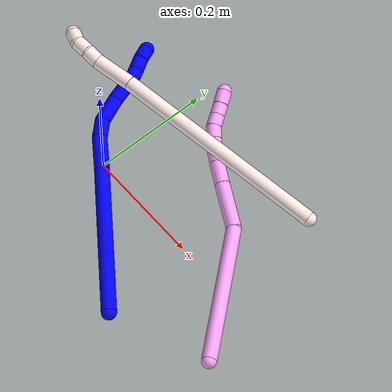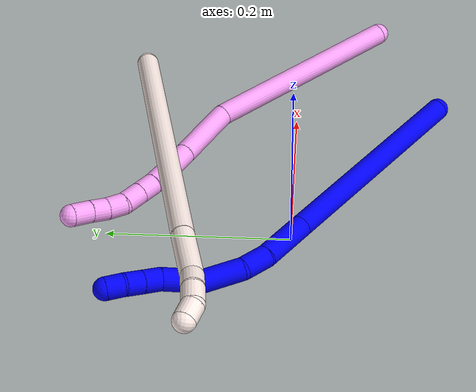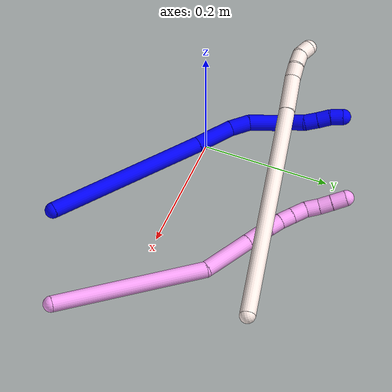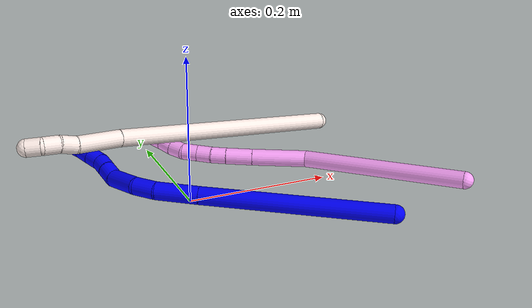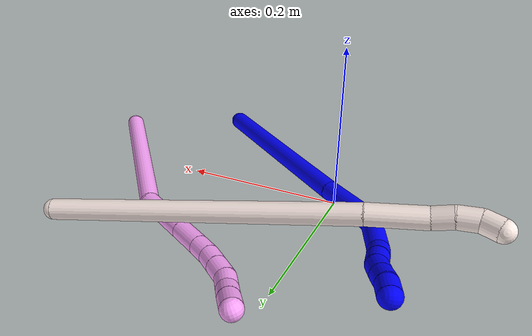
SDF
<sdf version="1.7">
 <world name="default">
  <model name="1">
   <static>0</static>
   <link name="1">
    <collision name="collision-cylinder-e_1_1_4">
     <pose>-0.104209 0.070821 -0.027122 -1.93653 -0.941698 1.27418</pose>
     <geometry><cylinder><radius>0.0125</radius><length>0.257766</length></cylinder></geometry>
     <surface>
      <friction><ode><mu>1.16</mu><mu2>1.16</mu2><slip1>0</slip1><slip2>0</slip2></ode></friction>
      <contact><ode><kp>1e+06</kp><kd>1</kd><max_vel>0</max_vel><min_depth>0.001</min_depth></ode></contact>
     </surface>
    </collision>
    <visual name="visual-cylinder-e_1_1_4">
     <pose>-0.104209 0.070821 -0.027122 -1.93653 -0.941698 1.27418</pose>
     <geometry><cylinder><radius>0.0125</radius><length>0.257766</length></cylinder></geometry>
     <material><ambient>0 0 1 1</ambient></material>
    </visual>
    <collision name="collision-cylinder-e_2_4_5">
     <pose>-0.233343 0.157552 -0.060925 -1.9684 -0.965217 1.33512</pose>
     <geometry><cylinder><radius>0.0125</radius><length>0.060629</length></cylinder></geometry>
     <surface>
      <friction><ode><mu>1.16</mu><mu2>1.16</mu2><slip1>0</slip1><slip2>0</slip2></ode></friction>
      <contact><ode><kp>1e+06</kp><kd>1</kd><max_vel>0</max_vel><min_depth>0.001</min_depth></ode></contact>
     </surface>
    </collision>
    <visual name="visual-cylinder-e_2_4_5">
     <pose>-0.233343 0.157552 -0.060925 -1.9684 -0.965217 1.33512</pose>
     <geometry><cylinder><radius>0.0125</radius><length>0.060629</length></cylinder></geometry>
     <material><ambient>0 0 1 1</ambient></material>
    </visual>
    <collision name="collision-cylinder-e_3_5_6">
     <pose>-0.271185 0.182482 -0.067927 -1.60625 -0.960974 0.990339</pose>
     <geometry><cylinder><radius>0.0125</radius><length>0.031519</length></cylinder></geometry>
     <surface>
      <friction><ode><mu>1.16</mu><mu2>1.16</mu2><slip1>0</slip1><slip2>0</slip2></ode></friction>
      <contact><ode><kp>1e+06</kp><kd>1</kd><max_vel>0</max_vel><min_depth>0.001</min_depth></ode></contact>
     </surface>
    </collision>
    <visual name="visual-cylinder-e_3_5_6">
     <pose>-0.271185 0.182482 -0.067927 -1.60625 -0.960974 0.990339</pose>
     <geometry><cylinder><radius>0.0125</radius><length>0.031519</length></cylinder></geometry>
     <material><ambient>0 0 1 1</ambient></material>
    </visual>
    <collision name="collision-cylinder-e_4_6_7">
     <pose>-0.300051 0.20736 -0.062082 -1.2 -0.753032 0.528343</pose>
     <geometry><cylinder><radius>0.0125</radius><length>0.046637</length></cylinder></geometry>
     <surface>
      <friction><ode><mu>1.16</mu><mu2>1.16</mu2><slip1>0</slip1><slip2>0</slip2></ode></friction>
      <contact><ode><kp>1e+06</kp><kd>1</kd><max_vel>0</max_vel><min_depth>0.001</min_depth></ode></contact>
     </surface>
    </collision>
    <visual name="visual-cylinder-e_4_6_7">
     <pose>-0.300051 0.20736 -0.062082 -1.2 -0.753032 0.528343</pose>
     <geometry><cylinder><radius>0.0125</radius><length>0.046637</length></cylinder></geometry>
     <material><ambient>0 0 1 1</ambient></material>
    </visual>
    <collision name="collision-cylinder-e_5_7_8">
     <pose>-0.324289 0.227691 -0.050191 -0.663258 -0.8512 0.309689</pose>
     <geometry><cylinder><radius>0.0125</radius><length>0.02205</length></cylinder></geometry>
     <surface>
      <friction><ode><mu>1.16</mu><mu2>1.16</mu2><slip1>0</slip1><slip2>0</slip2></ode></friction>
      <contact><ode><kp>1e+06</kp><kd>1</kd><max_vel>0</max_vel><min_depth>0.001</min_depth></ode></contact>
     </surface>
    </collision>
    <visual name="visual-cylinder-e_5_7_8">
     <pose>-0.324289 0.227691 -0.050191 -0.663258 -0.8512 0.309689</pose>
     <geometry><cylinder><radius>0.0125</radius><length>0.02205</length></cylinder></geometry>
     <material><ambient>0 0 1 1</ambient></material>
    </visual>
    <collision name="collision-cylinder-e_6_8_9">
     <pose>-0.339784 0.237047 -0.038856 -0.716135 -0.769476 0.300751</pose>
     <geometry><cylinder><radius>0.0125</radius><length>0.020705</length></cylinder></geometry>
     <surface>
      <friction><ode><mu>1.16</mu><mu2>1.16</mu2><slip1>0</slip1><slip2>0</slip2></ode></friction>
      <contact><ode><kp>1e+06</kp><kd>1</kd><max_vel>0</max_vel><min_depth>0.001</min_depth></ode></contact>
     </surface>
    </collision>
    <visual name="visual-cylinder-e_6_8_9">
     <pose>-0.339784 0.237047 -0.038856 -0.716135 -0.769476 0.300751</pose>
     <geometry><cylinder><radius>0.0125</radius><length>0.020705</length></cylinder></geometry>
     <material><ambient>0 0 1 1</ambient></material>
    </visual>
    <collision name="collision-cylinder-e_7_9_10">
     <pose>-0.355436 0.246926 -0.030358 -1.04676 -0.971448 0.591405</pose>
     <geometry><cylinder><radius>0.0125</radius><length>0.020467</length></cylinder></geometry>
     <surface>
      <friction><ode><mu>1.16</mu><mu2>1.16</mu2><slip1>0</slip1><slip2>0</slip2></ode></friction>
      <contact><ode><kp>1e+06</kp><kd>1</kd><max_vel>0</max_vel><min_depth>0.001</min_depth></ode></contact>
     </surface>
    </collision>
    <visual name="visual-cylinder-e_7_9_10">
     <pose>-0.355436 0.246926 -0.030358 -1.04676 -0.971448 0.591405</pose>
     <geometry><cylinder><radius>0.0125</radius><length>0.020467</length></cylinder></geometry>
     <material><ambient>0 0 1 1</ambient></material>
    </visual>
    <collision name="collision-cylinder-e_8_10_11">
     <pose>-0.372512 0.256433 -0.024746 -1.02741 -1.02261 0.613194</pose>
     <geometry><cylinder><radius>0.0125</radius><length>0.020215</length></cylinder></geometry>
     <surface>
      <friction><ode><mu>1.16</mu><mu2>1.16</mu2><slip1>0</slip1><slip2>0</slip2></ode></friction>
      <contact><ode><kp>1e+06</kp><kd>1</kd><max_vel>0</max_vel><min_depth>0.001</min_depth></ode></contact>
     </surface>
    </collision>
    <visual name="visual-cylinder-e_8_10_11">
     <pose>-0.372512 0.256433 -0.024746 -1.02741 -1.02261 0.613194</pose>
     <geometry><cylinder><radius>0.0125</radius><length>0.020215</length></cylinder></geometry>
     <material><ambient>0 0 1 1</ambient></material>
    </visual>
    <collision name="collision-cylinder-e_9_11_2">
     <pose>-0.388389 0.26705 -0.018824 -1.08835 -0.810516 0.507986</pose>
     <geometry><cylinder><radius>0.0125</radius><length>0.020012</length></cylinder></geometry>
     <surface>
      <friction><ode><mu>1.16</mu><mu2>1.16</mu2><slip1>0</slip1><slip2>0</slip2></ode></friction>
      <contact><ode><kp>1e+06</kp><kd>1</kd><max_vel>0</max_vel><min_depth>0.001</min_depth></ode></contact>
     </surface>
    </collision>
    <visual name="visual-cylinder-e_9_11_2">
     <pose>-0.388389 0.26705 -0.018824 -1.08835 -0.810516 0.507986</pose>
     <geometry><cylinder><radius>0.0125</radius><length>0.020012</length></cylinder></geometry>
     <material><ambient>0 0 1 1</ambient></material>
    </visual>
    <collision name="collision-sphere-2">
     <pose>-0.39564 0.273158 -0.015625 0 -0 0</pose>
     <geometry><sphere><radius>0.0125</radius></sphere></geometry>
     <surface>
      <friction><ode><mu>1.16</mu><mu2>1.16</mu2><slip1>0</slip1><slip2>0</slip2></ode></friction>
      <contact><ode><kp>1e+06</kp><kd>1</kd><max_vel>0</max_vel><min_depth>0.001</min_depth></ode></contact>
     </surface>
    </collision>
    <visual name="visual-sphere-2">
     <pose>-0.39564 0.273158 -0.015625 0 -0 0</pose>
     <geometry><sphere><radius>0.0125</radius></sphere></geometry>
     <material><ambient>0 0 1 1</ambient></material>
    </visual>
    <collision name="collision-sphere-11">
     <pose>-0.381138 0.260942 -0.022023 0 -0 0</pose>
     <geometry><sphere><radius>0.0125</radius></sphere></geometry>
     <surface>
      <friction><ode><mu>1.16</mu><mu2>1.16</mu2><slip1>0</slip1><slip2>0</slip2></ode></friction>
      <contact><ode><kp>1e+06</kp><kd>1</kd><max_vel>0</max_vel><min_depth>0.001</min_depth></ode></contact>
     </surface>
    </collision>
    <visual name="visual-sphere-11">
     <pose>-0.381138 0.260942 -0.022023 0 -0 0</pose>
     <geometry><sphere><radius>0.0125</radius></sphere></geometry>
     <material><ambient>0 0 1 1</ambient></material>
    </visual>
    <collision name="collision-sphere-10">
     <pose>-0.363886 0.251924 -0.02747 0 -0 0</pose>
     <geometry><sphere><radius>0.0125</radius></sphere></geometry>
     <surface>
      <friction><ode><mu>1.16</mu><mu2>1.16</mu2><slip1>0</slip1><slip2>0</slip2></ode></friction>
      <contact><ode><kp>1e+06</kp><kd>1</kd><max_vel>0</max_vel><min_depth>0.001</min_depth></ode></contact>
     </surface>
    </collision>
    <visual name="visual-sphere-10">
     <pose>-0.363886 0.251924 -0.02747 0 -0 0</pose>
     <geometry><sphere><radius>0.0125</radius></sphere></geometry>
     <material><ambient>0 0 1 1</ambient></material>
    </visual>
    <collision name="collision-sphere-9">
     <pose>-0.346986 0.241928 -0.033247 0 -0 0</pose>
     <geometry><sphere><radius>0.0125</radius></sphere></geometry>
     <surface>
      <friction><ode><mu>1.16</mu><mu2>1.16</mu2><slip1>0</slip1><slip2>0</slip2></ode></friction>
      <contact><ode><kp>1e+06</kp><kd>1</kd><max_vel>0</max_vel><min_depth>0.001</min_depth></ode></contact>
     </surface>
    </collision>
    <visual name="visual-sphere-9">
     <pose>-0.346986 0.241928 -0.033247 0 -0 0</pose>
     <geometry><sphere><radius>0.0125</radius></sphere></geometry>
     <material><ambient>0 0 1 1</ambient></material>
    </visual>
    <collision name="collision-sphere-4">
     <pose>-0.208419 0.141642 -0.054244 0 -0 0</pose>
     <geometry><sphere><radius>0.0125</radius></sphere></geometry>
     <surface>
      <friction><ode><mu>1.16</mu><mu2>1.16</mu2><slip1>0</slip1><slip2>0</slip2></ode></friction>
      <contact><ode><kp>1e+06</kp><kd>1</kd><max_vel>0</max_vel><min_depth>0.001</min_depth></ode></contact>
     </surface>
    </collision>
    <visual name="visual-sphere-4">
     <pose>-0.208419 0.141642 -0.054244 0 -0 0</pose>
     <geometry><sphere><radius>0.0125</radius></sphere></geometry>
     <material><ambient>0 0 1 1</ambient></material>
    </visual>
    <collision name="collision-sphere-1">
     <geometry><sphere><radius>0.0125</radius></sphere></geometry>
     <surface>
      <friction><ode><mu>1.16</mu><mu2>1.16</mu2><slip1>0</slip1><slip2>0</slip2></ode></friction>
      <contact><ode><kp>1e+06</kp><kd>1</kd><max_vel>0</max_vel><min_depth>0.001</min_depth></ode></contact>
     </surface>
    </collision>
    <visual name="visual-sphere-1">
     <geometry><sphere><radius>0.0125</radius></sphere></geometry>
     <material><ambient>0 0 1 1</ambient></material>
    </visual>
    <collision name="collision-sphere-8">
     <pose>-0.332581 0.232165 -0.044465 0 -0 0</pose>
     <geometry><sphere><radius>0.0125</radius></sphere></geometry>
     <surface>
      <friction><ode><mu>1.16</mu><mu2>1.16</mu2><slip1>0</slip1><slip2>0</slip2></ode></friction>
      <contact><ode><kp>1e+06</kp><kd>1</kd><max_vel>0</max_vel><min_depth>0.001</min_depth></ode></contact>
     </surface>
    </collision>
    <visual name="visual-sphere-8">
     <pose>-0.332581 0.232165 -0.044465 0 -0 0</pose>
     <geometry><sphere><radius>0.0125</radius></sphere></geometry>
     <material><ambient>0 0 1 1</ambient></material>
    </visual>
    <collision name="collision-sphere-5">
     <pose>-0.258267 0.173462 -0.067607 0 -0 0</pose>
     <geometry><sphere><radius>0.0125</radius></sphere></geometry>
     <surface>
      <friction><ode><mu>1.16</mu><mu2>1.16</mu2><slip1>0</slip1><slip2>0</slip2></ode></friction>
      <contact><ode><kp>1e+06</kp><kd>1</kd><max_vel>0</max_vel><min_depth>0.001</min_depth></ode></contact>
     </surface>
    </collision>
    <visual name="visual-sphere-5">
     <pose>-0.258267 0.173462 -0.067607 0 -0 0</pose>
     <geometry><sphere><radius>0.0125</radius></sphere></geometry>
     <material><ambient>0 0 1 1</ambient></material>
    </visual>
    <collision name="collision-sphere-6">
     <pose>-0.284104 0.191503 -0.068247 0 -0 0</pose>
     <geometry><sphere><radius>0.0125</radius></sphere></geometry>
     <surface>
      <friction><ode><mu>1.16</mu><mu2>1.16</mu2><slip1>0</slip1><slip2>0</slip2></ode></friction>
      <contact><ode><kp>1e+06</kp><kd>1</kd><max_vel>0</max_vel><min_depth>0.001</min_depth></ode></contact>
     </surface>
    </collision>
    <visual name="visual-sphere-6">
     <pose>-0.284104 0.191503 -0.068247 0 -0 0</pose>
     <geometry><sphere><radius>0.0125</radius></sphere></geometry>
     <material><ambient>0 0 1 1</ambient></material>
    </visual>
    <collision name="collision-sphere-7">
     <pose>-0.315997 0.223217 -0.055917 0 -0 0</pose>
     <geometry><sphere><radius>0.0125</radius></sphere></geometry>
     <surface>
      <friction><ode><mu>1.16</mu><mu2>1.16</mu2><slip1>0</slip1><slip2>0</slip2></ode></friction>
      <contact><ode><kp>1e+06</kp><kd>1</kd><max_vel>0</max_vel><min_depth>0.001</min_depth></ode></contact>
     </surface>
    </collision>
    <visual name="visual-sphere-7">
     <pose>-0.315997 0.223217 -0.055917 0 -0 0</pose>
     <geometry><sphere><radius>0.0125</radius></sphere></geometry>
     <material><ambient>0 0 1 1</ambient></material>
    </visual>
    <inertial>
     <pose>-0.200626 0.13748 -0.038262 0 -0 0</pose>
     <mass>0.5</mass>
     <inertia>
      <ixx>0.001059</ixx>
      <ixy>0</ixy>
      <ixz>0</ixz>
      <iyy>0.001766</iyy>
      <iyz>0</iyz>
      <izz>0.000381</izz>
     </inertia>
    </inertial>
   </link>
   <pose>0.216163 -0.164299 0.012764 -1.23056 0.624036 -0.656018</pose>
  </model>
  <model name="4">
   <static>0</static>
   <link name="4">
    <collision name="collision-cylinder-e_1_1_4">
     <pose>-0.03448 0.107877 -0.043963 -1.95778 -0.287774 0.424515</pose>
     <geometry><cylinder><radius>0.0125</radius><length>0.242975</length></cylinder></geometry>
     <surface>
      <friction><ode><mu>1.16</mu><mu2>1.16</mu2><slip1>0</slip1><slip2>0</slip2></ode></friction>
      <contact><ode><kp>1e+06</kp><kd>1</kd><max_vel>0</max_vel><min_depth>0.001</min_depth></ode></contact>
     </surface>
    </collision>
    <visual name="visual-cylinder-e_1_1_4">
     <pose>-0.03448 0.107877 -0.043963 -1.95778 -0.287774 0.424515</pose>
     <geometry><cylinder><radius>0.0125</radius><length>0.242975</length></cylinder></geometry>
     <material><ambient>1 0.65098 0.996078 1</ambient></material>
    </visual>
    <collision name="collision-cylinder-e_2_4_5">
     <pose>-0.094131 0.24412 -0.104055 -2.08782 -0.657048 1.06006</pose>
     <geometry><cylinder><radius>0.0125</radius><length>0.082418</length></cylinder></geometry>
     <surface>
      <friction><ode><mu>1.16</mu><mu2>1.16</mu2><slip1>0</slip1><slip2>0</slip2></ode></friction>
      <contact><ode><kp>1e+06</kp><kd>1</kd><max_vel>0</max_vel><min_depth>0.001</min_depth></ode></contact>
     </surface>
    </collision>
    <visual name="visual-cylinder-e_2_4_5">
     <pose>-0.094131 0.24412 -0.104055 -2.08782 -0.657048 1.06006</pose>
     <geometry><cylinder><radius>0.0125</radius><length>0.082418</length></cylinder></geometry>
     <material><ambient>1 0.65098 0.996078 1</ambient></material>
    </visual>
    <collision name="collision-cylinder-e_3_5_6">
     <pose>-0.131559 0.286615 -0.127846 -2.06769 -0.651512 1.03226</pose>
     <geometry><cylinder><radius>0.0125</radius><length>0.040431</length></cylinder></geometry>
     <surface>
      <friction><ode><mu>1.16</mu><mu2>1.16</mu2><slip1>0</slip1><slip2>0</slip2></ode></friction>
      <contact><ode><kp>1e+06</kp><kd>1</kd><max_vel>0</max_vel><min_depth>0.001</min_depth></ode></contact>
     </surface>
    </collision>
    <visual name="visual-cylinder-e_3_5_6">
     <pose>-0.131559 0.286615 -0.127846 -2.06769 -0.651512 1.03226</pose>
     <geometry><cylinder><radius>0.0125</radius><length>0.040431</length></cylinder></geometry>
     <material><ambient>1 0.65098 0.996078 1</ambient></material>
    </visual>
    <collision name="collision-cylinder-e_4_6_7">
     <pose>-0.150584 0.309067 -0.139698 -2.03713 -0.628151 0.970285</pose>
     <geometry><cylinder><radius>0.0125</radius><length>0.023029</length></cylinder></geometry>
     <surface>
      <friction><ode><mu>1.16</mu><mu2>1.16</mu2><slip1>0</slip1><slip2>0</slip2></ode></friction>
      <contact><ode><kp>1e+06</kp><kd>1</kd><max_vel>0</max_vel><min_depth>0.001</min_depth></ode></contact>
     </surface>
    </collision>
    <visual name="visual-cylinder-e_4_6_7">
     <pose>-0.150584 0.309067 -0.139698 -2.03713 -0.628151 0.970285</pose>
     <geometry><cylinder><radius>0.0125</radius><length>0.023029</length></cylinder></geometry>
     <material><ambient>1 0.65098 0.996078 1</ambient></material>
    </visual>
    <collision name="collision-cylinder-e_5_7_8">
     <pose>-0.162625 0.326182 -0.147591 -1.96957 -0.504961 0.741374</pose>
     <geometry><cylinder><radius>0.0125</radius><length>0.021804</length></cylinder></geometry>
     <surface>
      <friction><ode><mu>1.16</mu><mu2>1.16</mu2><slip1>0</slip1><slip2>0</slip2></ode></friction>
      <contact><ode><kp>1e+06</kp><kd>1</kd><max_vel>0</max_vel><min_depth>0.001</min_depth></ode></contact>
     </surface>
    </collision>
    <visual name="visual-cylinder-e_5_7_8">
     <pose>-0.162625 0.326182 -0.147591 -1.96957 -0.504961 0.741374</pose>
     <geometry><cylinder><radius>0.0125</radius><length>0.021804</length></cylinder></geometry>
     <material><ambient>1 0.65098 0.996078 1</ambient></material>
    </visual>
    <collision name="collision-cylinder-e_6_8_9">
     <pose>-0.173745 0.34471 -0.1554 -1.96972 -0.505463 0.742181</pose>
     <geometry><cylinder><radius>0.0125</radius><length>0.02415</length></cylinder></geometry>
     <surface>
      <friction><ode><mu>1.16</mu><mu2>1.16</mu2><slip1>0</slip1><slip2>0</slip2></ode></friction>
      <contact><ode><kp>1e+06</kp><kd>1</kd><max_vel>0</max_vel><min_depth>0.001</min_depth></ode></contact>
     </surface>
    </collision>
    <visual name="visual-cylinder-e_6_8_9">
     <pose>-0.173745 0.34471 -0.1554 -1.96972 -0.505463 0.742181</pose>
     <geometry><cylinder><radius>0.0125</radius><length>0.02415</length></cylinder></geometry>
     <material><ambient>1 0.65098 0.996078 1</ambient></material>
    </visual>
    <collision name="collision-cylinder-e_7_9_10">
     <pose>-0.182085 0.364808 -0.161618 -1.77211 -0.23147 0.28285</pose>
     <geometry><cylinder><radius>0.0125</radius><length>0.021733</length></cylinder></geometry>
     <surface>
      <friction><ode><mu>1.16</mu><mu2>1.16</mu2><slip1>0</slip1><slip2>0</slip2></ode></friction>
      <contact><ode><kp>1e+06</kp><kd>1</kd><max_vel>0</max_vel><min_depth>0.001</min_depth></ode></contact>
     </surface>
    </collision>
    <visual name="visual-cylinder-e_7_9_10">
     <pose>-0.182085 0.364808 -0.161618 -1.77211 -0.23147 0.28285</pose>
     <geometry><cylinder><radius>0.0125</radius><length>0.021733</length></cylinder></geometry>
     <material><ambient>1 0.65098 0.996078 1</ambient></material>
    </visual>
    <collision name="collision-cylinder-e_8_10_11">
     <pose>-0.1873 0.384908 -0.164241 -1.62286 -0.272254 0.286618</pose>
     <geometry><cylinder><radius>0.0125</radius><length>0.020246</length></cylinder></geometry>
     <surface>
      <friction><ode><mu>1.16</mu><mu2>1.16</mu2><slip1>0</slip1><slip2>0</slip2></ode></friction>
      <contact><ode><kp>1e+06</kp><kd>1</kd><max_vel>0</max_vel><min_depth>0.001</min_depth></ode></contact>
     </surface>
    </collision>
    <visual name="visual-cylinder-e_8_10_11">
     <pose>-0.1873 0.384908 -0.164241 -1.62286 -0.272254 0.286618</pose>
     <geometry><cylinder><radius>0.0125</radius><length>0.020246</length></cylinder></geometry>
     <material><ambient>1 0.65098 0.996078 1</ambient></material>
    </visual>
    <collision name="collision-cylinder-e_9_11_2">
     <pose>-0.193374 0.405714 -0.165739 -1.66012 -0.2929 0.319858</pose>
     <geometry><cylinder><radius>0.0125</radius><length>0.023214</length></cylinder></geometry>
     <surface>
      <friction><ode><mu>1.16</mu><mu2>1.16</mu2><slip1>0</slip1><slip2>0</slip2></ode></friction>
      <contact><ode><kp>1e+06</kp><kd>1</kd><max_vel>0</max_vel><min_depth>0.001</min_depth></ode></contact>
     </surface>
    </collision>
    <visual name="visual-cylinder-e_9_11_2">
     <pose>-0.193374 0.405714 -0.165739 -1.66012 -0.2929 0.319858</pose>
     <geometry><cylinder><radius>0.0125</radius><length>0.023214</length></cylinder></geometry>
     <material><ambient>1 0.65098 0.996078 1</ambient></material>
    </visual>
    <collision name="collision-sphere-2">
     <pose>-0.196725 0.416782 -0.166731 0 -0 0</pose>
     <geometry><sphere><radius>0.0125</radius></sphere></geometry>
     <surface>
      <friction><ode><mu>1.16</mu><mu2>1.16</mu2><slip1>0</slip1><slip2>0</slip2></ode></friction>
      <contact><ode><kp>1e+06</kp><kd>1</kd><max_vel>0</max_vel><min_depth>0.001</min_depth></ode></contact>
     </surface>
    </collision>
    <visual name="visual-sphere-2">
     <pose>-0.196725 0.416782 -0.166731 0 -0 0</pose>
     <geometry><sphere><radius>0.0125</radius></sphere></geometry>
     <material><ambient>1 0.65098 0.996078 1</ambient></material>
    </visual>
    <collision name="collision-sphere-11">
     <pose>-0.190022 0.394646 -0.164748 0 -0 0</pose>
     <geometry><sphere><radius>0.0125</radius></sphere></geometry>
     <surface>
      <friction><ode><mu>1.16</mu><mu2>1.16</mu2><slip1>0</slip1><slip2>0</slip2></ode></friction>
      <contact><ode><kp>1e+06</kp><kd>1</kd><max_vel>0</max_vel><min_depth>0.001</min_depth></ode></contact>
     </surface>
    </collision>
    <visual name="visual-sphere-11">
     <pose>-0.190022 0.394646 -0.164748 0 -0 0</pose>
     <geometry><sphere><radius>0.0125</radius></sphere></geometry>
     <material><ambient>1 0.65098 0.996078 1</ambient></material>
    </visual>
    <collision name="collision-sphere-10">
     <pose>-0.184578 0.375171 -0.163733 0 -0 0</pose>
     <geometry><sphere><radius>0.0125</radius></sphere></geometry>
     <surface>
      <friction><ode><mu>1.16</mu><mu2>1.16</mu2><slip1>0</slip1><slip2>0</slip2></ode></friction>
      <contact><ode><kp>1e+06</kp><kd>1</kd><max_vel>0</max_vel><min_depth>0.001</min_depth></ode></contact>
     </surface>
    </collision>
    <visual name="visual-sphere-10">
     <pose>-0.184578 0.375171 -0.163733 0 -0 0</pose>
     <geometry><sphere><radius>0.0125</radius></sphere></geometry>
     <material><ambient>1 0.65098 0.996078 1</ambient></material>
    </visual>
    <collision name="collision-sphere-9">
     <pose>-0.179592 0.354446 -0.159504 0 -0 0</pose>
     <geometry><sphere><radius>0.0125</radius></sphere></geometry>
     <surface>
      <friction><ode><mu>1.16</mu><mu2>1.16</mu2><slip1>0</slip1><slip2>0</slip2></ode></friction>
      <contact><ode><kp>1e+06</kp><kd>1</kd><max_vel>0</max_vel><min_depth>0.001</min_depth></ode></contact>
     </surface>
    </collision>
    <visual name="visual-sphere-9">
     <pose>-0.179592 0.354446 -0.159504 0 -0 0</pose>
     <geometry><sphere><radius>0.0125</radius></sphere></geometry>
     <material><ambient>1 0.65098 0.996078 1</ambient></material>
    </visual>
    <collision name="collision-sphere-4">
     <pose>-0.068961 0.215755 -0.087926 0 -0 0</pose>
     <geometry><sphere><radius>0.0125</radius></sphere></geometry>
     <surface>
      <friction><ode><mu>1.16</mu><mu2>1.16</mu2><slip1>0</slip1><slip2>0</slip2></ode></friction>
      <contact><ode><kp>1e+06</kp><kd>1</kd><max_vel>0</max_vel><min_depth>0.001</min_depth></ode></contact>
     </surface>
    </collision>
    <visual name="visual-sphere-4">
     <pose>-0.068961 0.215755 -0.087926 0 -0 0</pose>
     <geometry><sphere><radius>0.0125</radius></sphere></geometry>
     <material><ambient>1 0.65098 0.996078 1</ambient></material>
    </visual>
    <collision name="collision-sphere-1">
     <geometry><sphere><radius>0.0125</radius></sphere></geometry>
     <surface>
      <friction><ode><mu>1.16</mu><mu2>1.16</mu2><slip1>0</slip1><slip2>0</slip2></ode></friction>
      <contact><ode><kp>1e+06</kp><kd>1</kd><max_vel>0</max_vel><min_depth>0.001</min_depth></ode></contact>
     </surface>
    </collision>
    <visual name="visual-sphere-1">
     <geometry><sphere><radius>0.0125</radius></sphere></geometry>
     <material><ambient>1 0.65098 0.996078 1</ambient></material>
    </visual>
    <collision name="collision-sphere-8">
     <pose>-0.167899 0.334975 -0.151296 0 -0 0</pose>
     <geometry><sphere><radius>0.0125</radius></sphere></geometry>
     <surface>
      <friction><ode><mu>1.16</mu><mu2>1.16</mu2><slip1>0</slip1><slip2>0</slip2></ode></friction>
      <contact><ode><kp>1e+06</kp><kd>1</kd><max_vel>0</max_vel><min_depth>0.001</min_depth></ode></contact>
     </surface>
    </collision>
    <visual name="visual-sphere-8">
     <pose>-0.167899 0.334975 -0.151296 0 -0 0</pose>
     <geometry><sphere><radius>0.0125</radius></sphere></geometry>
     <material><ambient>1 0.65098 0.996078 1</ambient></material>
    </visual>
    <collision name="collision-sphere-5">
     <pose>-0.1193 0.272484 -0.120183 0 -0 0</pose>
     <geometry><sphere><radius>0.0125</radius></sphere></geometry>
     <surface>
      <friction><ode><mu>1.16</mu><mu2>1.16</mu2><slip1>0</slip1><slip2>0</slip2></ode></friction>
      <contact><ode><kp>1e+06</kp><kd>1</kd><max_vel>0</max_vel><min_depth>0.001</min_depth></ode></contact>
     </surface>
    </collision>
    <visual name="visual-sphere-5">
     <pose>-0.1193 0.272484 -0.120183 0 -0 0</pose>
     <geometry><sphere><radius>0.0125</radius></sphere></geometry>
     <material><ambient>1 0.65098 0.996078 1</ambient></material>
    </visual>
    <collision name="collision-sphere-6">
     <pose>-0.143817 0.300746 -0.135509 0 -0 0</pose>
     <geometry><sphere><radius>0.0125</radius></sphere></geometry>
     <surface>
      <friction><ode><mu>1.16</mu><mu2>1.16</mu2><slip1>0</slip1><slip2>0</slip2></ode></friction>
      <contact><ode><kp>1e+06</kp><kd>1</kd><max_vel>0</max_vel><min_depth>0.001</min_depth></ode></contact>
     </surface>
    </collision>
    <visual name="visual-sphere-6">
     <pose>-0.143817 0.300746 -0.135509 0 -0 0</pose>
     <geometry><sphere><radius>0.0125</radius></sphere></geometry>
     <material><ambient>1 0.65098 0.996078 1</ambient></material>
    </visual>
    <collision name="collision-sphere-7">
     <pose>-0.15735 0.317389 -0.143887 0 -0 0</pose>
     <geometry><sphere><radius>0.0125</radius></sphere></geometry>
     <surface>
      <friction><ode><mu>1.16</mu><mu2>1.16</mu2><slip1>0</slip1><slip2>0</slip2></ode></friction>
      <contact><ode><kp>1e+06</kp><kd>1</kd><max_vel>0</max_vel><min_depth>0.001</min_depth></ode></contact>
     </surface>
    </collision>
    <visual name="visual-sphere-7">
     <pose>-0.15735 0.317389 -0.143887 0 -0 0</pose>
     <geometry><sphere><radius>0.0125</radius></sphere></geometry>
     <material><ambient>1 0.65098 0.996078 1</ambient></material>
    </visual>
    <inertial>
     <pose>-0.089806 0.211227 -0.0906 0 -0 0</pose>
     <mass>0.5</mass>
     <inertia>
      <ixx>0.001588</ixx>
      <ixy>0</ixy>
      <ixz>0</ixz>
      <iyy>0.000282</iyy>
      <iyz>0</iyz>
      <izz>-0.000751</izz>
     </inertia>
    </inertial>
   </link>
   <pose>0.375549 -0.096898 0.003581 0.216714 0.368285 0.368333</pose>
  </model>
  <model name="11">
   <static>0</static>
   <link name="11">
    <collision name="collision-cylinder-e_1_1_4">
     <pose>-0.160883 -0.081023 0.033138 1.18256 -1.07249 -0.759363</pose>
     <geometry><cylinder><radius>0.0125</radius><length>0.366311</length></cylinder></geometry>
     <surface>
      <friction><ode><mu>1.16</mu><mu2>1.16</mu2><slip1>0</slip1><slip2>0</slip2></ode></friction>
      <contact><ode><kp>1e+06</kp><kd>1</kd><max_vel>0</max_vel><min_depth>0.001</min_depth></ode></contact>
     </surface>
    </collision>
    <visual name="visual-cylinder-e_1_1_4">
     <pose>-0.160883 -0.081023 0.033138 1.18256 -1.07249 -0.759363</pose>
     <geometry><cylinder><radius>0.0125</radius><length>0.366311</length></cylinder></geometry>
     <material><ambient>1 0.933333 0.909804 1</ambient></material>
    </visual>
    <collision name="collision-cylinder-e_2_4_5">
     <pose>-0.351306 -0.175179 0.070813 1.23819 -1.13114 -0.849494</pose>
     <geometry><cylinder><radius>0.0125</radius><length>0.065292</length></cylinder></geometry>
     <surface>
      <friction><ode><mu>1.16</mu><mu2>1.16</mu2><slip1>0</slip1><slip2>0</slip2></ode></friction>
      <contact><ode><kp>1e+06</kp><kd>1</kd><max_vel>0</max_vel><min_depth>0.001</min_depth></ode></contact>
     </surface>
    </collision>
    <visual name="visual-cylinder-e_2_4_5">
     <pose>-0.351306 -0.175179 0.070813 1.23819 -1.13114 -0.849494</pose>
     <geometry><cylinder><radius>0.0125</radius><length>0.065292</length></cylinder></geometry>
     <material><ambient>1 0.933333 0.909804 1</ambient></material>
    </visual>
    <collision name="collision-cylinder-e_3_5_6">
     <pose>-0.39048 -0.194185 0.078857 1.03235 -0.953371 -0.570151</pose>
     <geometry><cylinder><radius>0.0125</radius><length>0.023627</length></cylinder></geometry>
     <surface>
      <friction><ode><mu>1.16</mu><mu2>1.16</mu2><slip1>0</slip1><slip2>0</slip2></ode></friction>
      <contact><ode><kp>1e+06</kp><kd>1</kd><max_vel>0</max_vel><min_depth>0.001</min_depth></ode></contact>
     </surface>
    </collision>
    <visual name="visual-cylinder-e_3_5_6">
     <pose>-0.39048 -0.194185 0.078857 1.03235 -0.953371 -0.570151</pose>
     <geometry><cylinder><radius>0.0125</radius><length>0.023627</length></cylinder></geometry>
     <material><ambient>1 0.933333 0.909804 1</ambient></material>
    </visual>
    <collision name="collision-cylinder-e_4_6_7">
     <pose>-0.410937 -0.203935 0.085447 0.899201 -1.14153 -0.6009</pose>
     <geometry><cylinder><radius>0.0125</radius><length>0.02381</length></cylinder></geometry>
     <surface>
      <friction><ode><mu>1.16</mu><mu2>1.16</mu2><slip1>0</slip1><slip2>0</slip2></ode></friction>
      <contact><ode><kp>1e+06</kp><kd>1</kd><max_vel>0</max_vel><min_depth>0.001</min_depth></ode></contact>
     </surface>
    </collision>
    <visual name="visual-cylinder-e_4_6_7">
     <pose>-0.410937 -0.203935 0.085447 0.899201 -1.14153 -0.6009</pose>
     <geometry><cylinder><radius>0.0125</radius><length>0.02381</length></cylinder></geometry>
     <material><ambient>1 0.933333 0.909804 1</ambient></material>
    </visual>
    <collision name="collision-cylinder-e_5_7_2">
     <pose>-0.430588 -0.20785 0.094181 0.006427 -1.00126 -0.003516</pose>
     <geometry><cylinder><radius>0.0125</radius><length>0.02096</length></cylinder></geometry>
     <surface>
      <friction><ode><mu>1.16</mu><mu2>1.16</mu2><slip1>0</slip1><slip2>0</slip2></ode></friction>
      <contact><ode><kp>1e+06</kp><kd>1</kd><max_vel>0</max_vel><min_depth>0.001</min_depth></ode></contact>
     </surface>
    </collision>
    <visual name="visual-cylinder-e_5_7_2">
     <pose>-0.430588 -0.20785 0.094181 0.006427 -1.00126 -0.003516</pose>
     <geometry><cylinder><radius>0.0125</radius><length>0.02096</length></cylinder></geometry>
     <material><ambient>1 0.933333 0.909804 1</ambient></material>
    </visual>
    <collision name="collision-sphere-2">
     <pose>-0.439413 -0.207886 0.099832 0 -0 0</pose>
     <geometry><sphere><radius>0.0125</radius></sphere></geometry>
     <surface>
      <friction><ode><mu>1.16</mu><mu2>1.16</mu2><slip1>0</slip1><slip2>0</slip2></ode></friction>
      <contact><ode><kp>1e+06</kp><kd>1</kd><max_vel>0</max_vel><min_depth>0.001</min_depth></ode></contact>
     </surface>
    </collision>
    <visual name="visual-sphere-2">
     <pose>-0.439413 -0.207886 0.099832 0 -0 0</pose>
     <geometry><sphere><radius>0.0125</radius></sphere></geometry>
     <material><ambient>1 0.933333 0.909804 1</ambient></material>
    </visual>
    <collision name="collision-sphere-7">
     <pose>-0.421762 -0.207814 0.08853 0 -0 0</pose>
     <geometry><sphere><radius>0.0125</radius></sphere></geometry>
     <surface>
      <friction><ode><mu>1.16</mu><mu2>1.16</mu2><slip1>0</slip1><slip2>0</slip2></ode></friction>
      <contact><ode><kp>1e+06</kp><kd>1</kd><max_vel>0</max_vel><min_depth>0.001</min_depth></ode></contact>
     </surface>
    </collision>
    <visual name="visual-sphere-7">
     <pose>-0.421762 -0.207814 0.08853 0 -0 0</pose>
     <geometry><sphere><radius>0.0125</radius></sphere></geometry>
     <material><ambient>1 0.933333 0.909804 1</ambient></material>
    </visual>
    <collision name="collision-sphere-6">
     <pose>-0.400112 -0.200056 0.082364 0 -0 0</pose>
     <geometry><sphere><radius>0.0125</radius></sphere></geometry>
     <surface>
      <friction><ode><mu>1.16</mu><mu2>1.16</mu2><slip1>0</slip1><slip2>0</slip2></ode></friction>
      <contact><ode><kp>1e+06</kp><kd>1</kd><max_vel>0</max_vel><min_depth>0.001</min_depth></ode></contact>
     </surface>
    </collision>
    <visual name="visual-sphere-6">
     <pose>-0.400112 -0.200056 0.082364 0 -0 0</pose>
     <geometry><sphere><radius>0.0125</radius></sphere></geometry>
     <material><ambient>1 0.933333 0.909804 1</ambient></material>
    </visual>
    <collision name="collision-sphere-5">
     <pose>-0.380848 -0.188313 0.075349 0 -0 0</pose>
     <geometry><sphere><radius>0.0125</radius></sphere></geometry>
     <surface>
      <friction><ode><mu>1.16</mu><mu2>1.16</mu2><slip1>0</slip1><slip2>0</slip2></ode></friction>
      <contact><ode><kp>1e+06</kp><kd>1</kd><max_vel>0</max_vel><min_depth>0.001</min_depth></ode></contact>
     </surface>
    </collision>
    <visual name="visual-sphere-5">
     <pose>-0.380848 -0.188313 0.075349 0 -0 0</pose>
     <geometry><sphere><radius>0.0125</radius></sphere></geometry>
     <material><ambient>1 0.933333 0.909804 1</ambient></material>
    </visual>
    <collision name="collision-sphere-1">
     <geometry><sphere><radius>0.0125</radius></sphere></geometry>
     <surface>
      <friction><ode><mu>1.16</mu><mu2>1.16</mu2><slip1>0</slip1><slip2>0</slip2></ode></friction>
      <contact><ode><kp>1e+06</kp><kd>1</kd><max_vel>0</max_vel><min_depth>0.001</min_depth></ode></contact>
     </surface>
    </collision>
    <visual name="visual-sphere-1">
     <geometry><sphere><radius>0.0125</radius></sphere></geometry>
     <material><ambient>1 0.933333 0.909804 1</ambient></material>
    </visual>
    <collision name="collision-sphere-4">
     <pose>-0.321765 -0.162046 0.066276 0 -0 0</pose>
     <geometry><sphere><radius>0.0125</radius></sphere></geometry>
     <surface>
      <friction><ode><mu>1.16</mu><mu2>1.16</mu2><slip1>0</slip1><slip2>0</slip2></ode></friction>
      <contact><ode><kp>1e+06</kp><kd>1</kd><max_vel>0</max_vel><min_depth>0.001</min_depth></ode></contact>
     </surface>
    </collision>
    <visual name="visual-sphere-4">
     <pose>-0.321765 -0.162046 0.066276 0 -0 0</pose>
     <geometry><sphere><radius>0.0125</radius></sphere></geometry>
     <material><ambient>1 0.933333 0.909804 1</ambient></material>
    </visual>
    <inertial>
     <pose>-0.219812 -0.109835 0.045268 0 -0 0</pose>
     <mass>0.5</mass>
     <inertia>
      <ixx>3.8e-05</ixx>
      <ixy>0</ixy>
      <ixz>0</ixz>
      <iyy>0.002078</iyy>
      <iyz>0</iyz>
      <izz>0.005477</izz>
     </inertia>
    </inertial>
   </link>
   <pose>0.291118 0.184223 0.011499 -1.13367 -0.35878 0.183607</pose>
  </model>
 </world>
</sdf>
